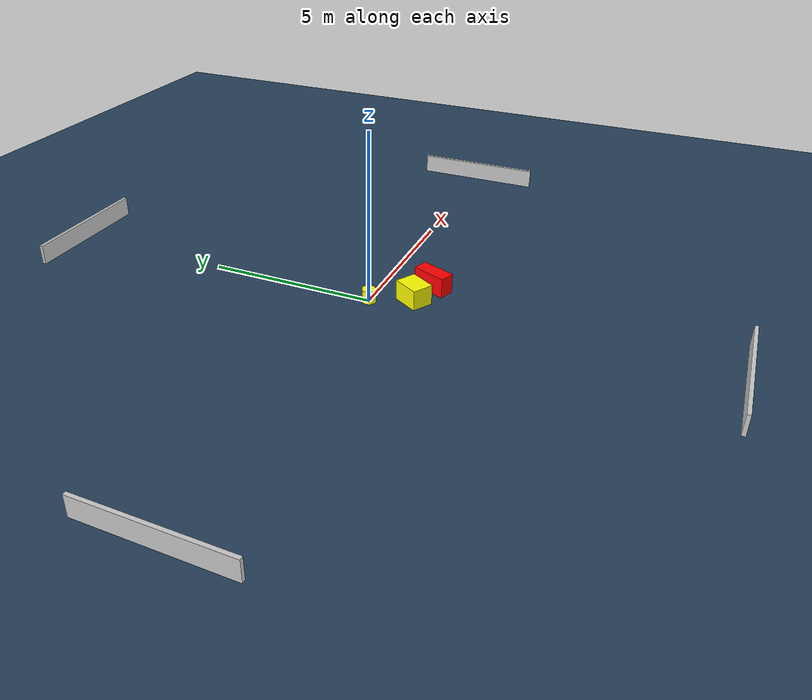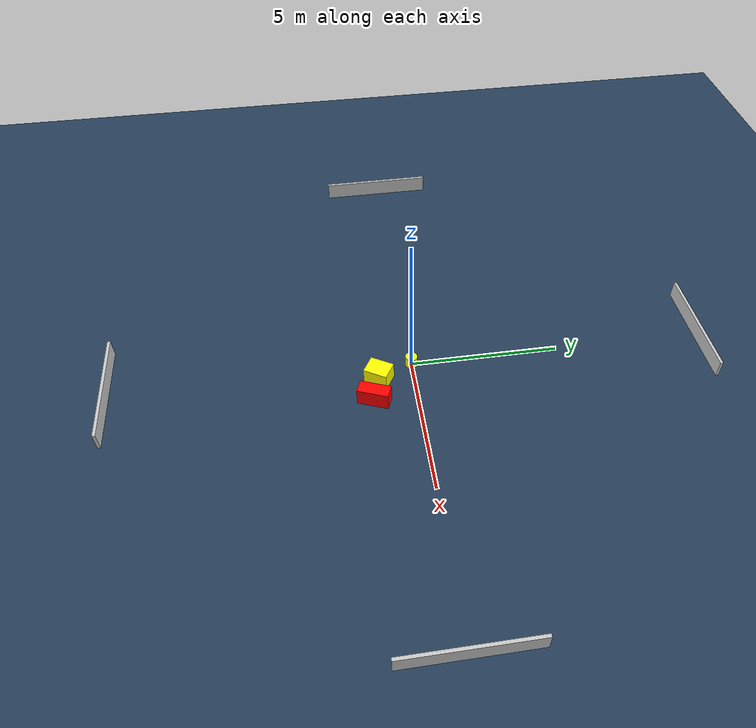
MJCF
<?xml version="1.0" ?>
<mujoco model="generated_environment">
  <option timestep="0.01" integrator="RK4" cone="elliptic"/>
  <default>
    <geom density="1"/>
  </default>
  <asset>
    <texture builtin="gradient" height="3072" name="skybox" rgb1="0.3 0.5 0.7" rgb2="0 0 0" type="skybox" width="512"/>
    <texture builtin="checker" height="300" name="groundplane" rgb1="0.2 0.3 0.4" rgb2="0.1 0.2 0.3" type="2d" width="300"/>
    <material name="groundplane" reflectance="0.2" texrepeat="5 5" texture="groundplane"/>
  </asset>
  <worldbody>
    <light dir="0 0 -1" directional="true" pos="0 0 1.5"/>
    <geom condim="3" friction="0.5 0.005 0.001" material="groundplane" name="floor" pos="0 0 0" size="0 0 0.05" type="plane"/>
    <body name="walls">
      <geom name="wall_1" condim="4" pos="-10.0 0.0 0.3" rgba="0.800000011920929 0.800000011920929 0.800000011920929 1.0" size="0.05 2.0 0.3" type="box"/>
      <geom name="wall_2" condim="4" pos="10.0 0.0 0.3" rgba="0.800000011920929 0.800000011920929 0.800000011920929 1.0" size="0.05 2.0 0.3" type="box"/>
      <geom name="wall_3" condim="4" pos="0.0 -10.0 0.3" rgba="0.800000011920929 0.800000011920929 0.800000011920929 1.0" size="2.0 0.05 0.3" type="box"/>
      <geom name="wall_4" condim="4" pos="0.0 10.0 0.3" rgba="0.800000011920929 0.800000011920929 0.800000011920929 1.0" size="2.0 0.05 0.3" type="box"/>
    </body>
    <body name="robot">
      <joint name="joint_x" type="slide" pos="0 0 0" axis="1 0 0"/>
      <joint name="joint_y" type="slide" pos="0 0 0" axis="0 1 0"/>
      <geom name="robot" type="cylinder" pos="0.0 0.0 0.2" size="0.2 0.2 0.0" mass="5.0" friction="1.0 0.005 0.0001" condim="4" rgba="1.0 1.0 0.0 1.0"/>
    </body>
    <body name="obstacle_1_movable">
      <geom name="obstacle_1_movable" condim="4" pos="0.5034161096380065 -1.1589893297258265 0.3" euler="0 0 59.23376482102991" friction="0.0 0.005 0.001" rgba="1.0 1.0 0.0 1.0" size="0.4028591567300823 0.31871233929477744 0.3" type="box" mass="0.1"/>
      <joint type="free"/>
    </body>
    <body name="obstacle_2_static">
      <geom name="obstacle_2_static" condim="4" pos="1.3927033178763735 -1.4108773221046544 0.3" euler="0 0 338.0866450950265" friction="0.0 0.005 0.001" rgba="1.0 0.0 0.0 1.0" size="0.22549043183982836 0.5189231518231958 0.3" type="box"/>
    </body>
  </worldbody>
  <actuator>
    <motor name="actuator_x" joint="joint_x" gear="1" ctrlrange="-1 1"/>
    <motor name="actuator_y" joint="joint_y" gear="1" ctrlrange="-1 1"/>
  </actuator>
</mujoco>
